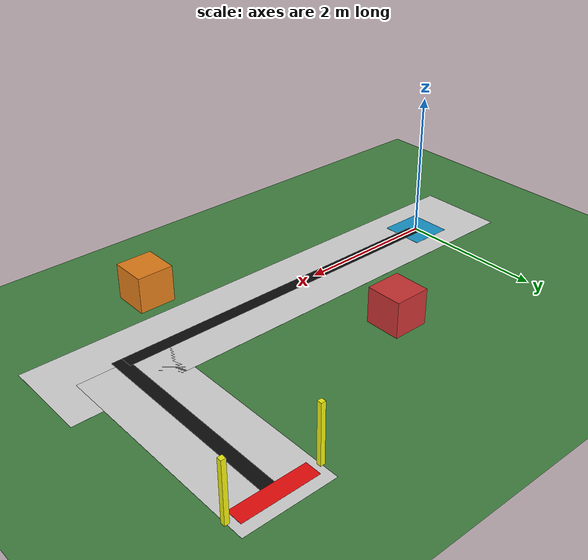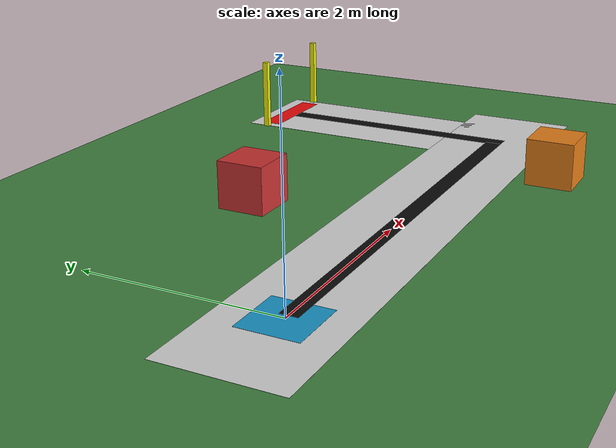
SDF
<?xml version="1.0" ?>
<sdf version="1.8">
  <world name="line_world">

    <!-- Plugins del sistema de simulacion            -->
    <!-- Estos plugins son necesarios para que        -->
    <!-- Gazebo pueda simular fisica, sensores,       -->
    <!-- comandos de usuario y transmitir la escena.  -->
    <plugin filename="gz-sim-physics-system" name="gz::sim::systems::Physics"/>
    <plugin filename="gz-sim-scene-broadcaster-system" name="gz::sim::systems::SceneBroadcaster"/>
    <plugin filename="gz-sim-user-commands-system" name="gz::sim::systems::UserCommands"/>
    <!-- Plugin de sensores: habilita camaras y LIDAR virtuales -->
    <plugin filename="gz-sim-sensors-system" name="gz::sim::systems::Sensors">
      <render_engine>ogre2</render_engine>
    </plugin>
    <!-- Plugin de contacto: necesario para deteccion de colisiones -->
    <plugin filename="gz-sim-contact-system" name="gz::sim::systems::Contact">
    </plugin>

    <!-- Configuracion visual de la escena            -->
    <scene>
      <ambient>0.6 0.6 0.6 1.0</ambient>
      <background>0.5 0.7 0.9 1.0</background>
      <shadows>true</shadows>
      <grid>false</grid>
    </scene>

    <!-- Luz solar (direccional)                      -->
    <light type="directional" name="sun">
      <cast_shadows>true</cast_shadows>
      <pose>0 0 10 0 0 0</pose>
      <diffuse>0.9 0.9 0.9 1</diffuse>
      <specular>0.3 0.3 0.3 1</specular>
      <direction>-0.3 0.3 -0.9</direction>
    </light>

    <!-- 1. Piso de pasto verde (plano infinito)      -->
    <model name="piso_pasto">
      <static>true</static>
      <!-- Z negativo minimo para evitar superposicion visual con la pista -->
      <pose>0 0 -0.002 0 0 0</pose>
      <link name="link">
        <collision name="collision">
          <geometry><plane><normal>0 0 1</normal><size>100 100</size></plane></geometry>
          <surface>
            <friction>
              <ode>
                <mu>50</mu>
              </ode>
            </friction>
          </surface>
        </collision>
        <visual name="visual">
          <geometry><plane><normal>0 0 1</normal><size>100 100</size></plane></geometry>
          <material>
            <!-- Verde pasto opaco -->
            <ambient>0.26 0.52 0.26 1</ambient>
            <diffuse>0.26 0.52 0.26 1</diffuse>
          </material>
        </visual>
      </link>
    </model>

    <!-- 2. Pista de concreto claro (area de carrera) -->
    <!-- Tramo recto horizontal -->
    <model name="pista_recta">
      <static>true</static>
      <pose>2.5 0 -0.001 0 0 0</pose>
      <link name="link">
        <visual name="visual">
          <geometry><box><size>7.0 1.2 0.001</size></box></geometry>
          <material>
             <!-- Gris casi blanco para resaltar la linea negra -->
             <ambient>0.85 0.85 0.85 1</ambient>
             <diffuse>0.85 0.85 0.85 1</diffuse>
          </material>
        </visual>
      </link>
    </model>

    <!-- Tramo vertical (curva en L) -->
    <model name="pista_curva">
      <static>true</static>
      <pose>5.0 1.5 -0.001 0 0 0</pose>
      <link name="link">
        <visual name="visual">
          <geometry><box><size>1.2 3.0 0.001</size></box></geometry>
          <material>
             <ambient>0.85 0.85 0.85 1</ambient>
             <diffuse>0.85 0.85 0.85 1</diffuse>
          </material>
        </visual>
      </link>
    </model>

    <!-- 3. Zona de inicio (marca azul bajo el robot) -->
    <model name="zona_inicio">
      <static>true</static>
      <pose>0 0 0.0005 0 0 0</pose>
      <link name="link">
        <visual name="visual">
          <geometry><box><size>0.6 0.6 0.001</size></box></geometry>
          <material>
            <!-- Azul electrico visible -->
            <ambient>0.1 0.6 0.8 1</ambient>
            <diffuse>0.1 0.6 0.8 1</diffuse>
          </material>
        </visual>
      </link>
    </model>

    <!-- 4. Linea negra principal del circuito        -->
    <!-- Tramo recto de la linea -->
    <model name="linea_recta">
      <static>true</static>
      <pose>2.5 0 0.001 0 0 0</pose>
      <link name="link">
        <visual name="visual">
          <geometry><box><size>4.9 0.18 0.001</size></box></geometry>
          <material><ambient>0.05 0.05 0.05 1</ambient><diffuse>0.05 0.05 0.05 1</diffuse></material>
        </visual>
      </link>
    </model>

    <!-- Tramo en esquina (forma de L) -->
    <model name="linea_esquina_L">
      <static>true</static>
      <pose>5.0 1.36 0.001 0 0 0</pose>
      <link name="link">
        <visual name="visual">
          <geometry><box><size>0.18 2.9 0.001</size></box></geometry>
          <material><ambient>0.05 0.05 0.05 1</ambient><diffuse>0.05 0.05 0.05 1</diffuse></material>
        </visual>
      </link>
    </model>

    <!-- 5. Decoracion (cajas de referencia visual)   -->
    <model name="caja_roja">
      <static>true</static>
      <pose>2.0 1.5 0.25 0 0 0</pose>
      <link name="link">
        <collision name="collision"><geometry><box><size>0.5 0.5 0.5</size></box></geometry></collision>
        <visual name="visual">
          <geometry><box><size>0.5 0.5 0.5</size></box></geometry>
          <material><ambient>0.8 0.2 0.2 1</ambient><diffuse>0.8 0.2 0.2 1</diffuse></material>
        </visual>
      </link>
    </model>

    <model name="caja_naranja">
      <static>true</static>
      <pose>4.0 -1.0 0.25 0 0 0</pose>
      <link name="link">
        <collision name="collision"><geometry><box><size>0.5 0.5 0.5</size></box></geometry></collision>
        <visual name="visual">
          <geometry><box><size>0.5 0.5 0.5</size></box></geometry>
          <material><ambient>0.9 0.5 0.1 1</ambient><diffuse>0.9 0.5 0.1 1</diffuse></material>
        </visual>
      </link>
    </model>

    <!-- 6. META: franja roja al final de la pista    -->
    <model name="meta_banda">
      <static>true</static>
      <pose>5.0 2.75 0.003 0 0 0</pose>
      <link name="link">
        <visual name="visual">
          <!-- Franja roja ancha, perpendicular a la linea -->
          <geometry><box><size>1.0 0.22 0.001</size></box></geometry>
          <material>
            <!-- Rojo puro saturado: facil de detectar con HSV -->
            <ambient>0.95 0.05 0.05 1</ambient>
            <diffuse>0.95 0.05 0.05 1</diffuse>
          </material>
        </visual>
      </link>
    </model>

    <!-- Postes decorativos de la meta (amarillos) -->
    <model name="meta_poste_izq">
      <static>true</static>
      <pose>4.4 2.75 0.4 0 0 0</pose>
      <link name="link">
        <collision name="col"><geometry><box><size>0.06 0.06 0.8</size></box></geometry></collision>
        <visual name="visual">
          <geometry><box><size>0.06 0.06 0.8</size></box></geometry>
          <material><ambient>0.95 0.95 0.05 1</ambient><diffuse>0.95 0.95 0.05 1</diffuse></material>
        </visual>
      </link>
    </model>

    <model name="meta_poste_der">
      <static>true</static>
      <pose>5.6 2.75 0.4 0 0 0</pose>
      <link name="link">
        <collision name="col"><geometry><box><size>0.06 0.06 0.8</size></box></geometry></collision>
        <visual name="visual">
          <geometry><box><size>0.06 0.06 0.8</size></box></geometry>
          <material><ambient>0.95 0.95 0.05 1</ambient><diffuse>0.95 0.95 0.05 1</diffuse></material>
        </visual>
      </link>
    </model>

  </world>
</sdf>
